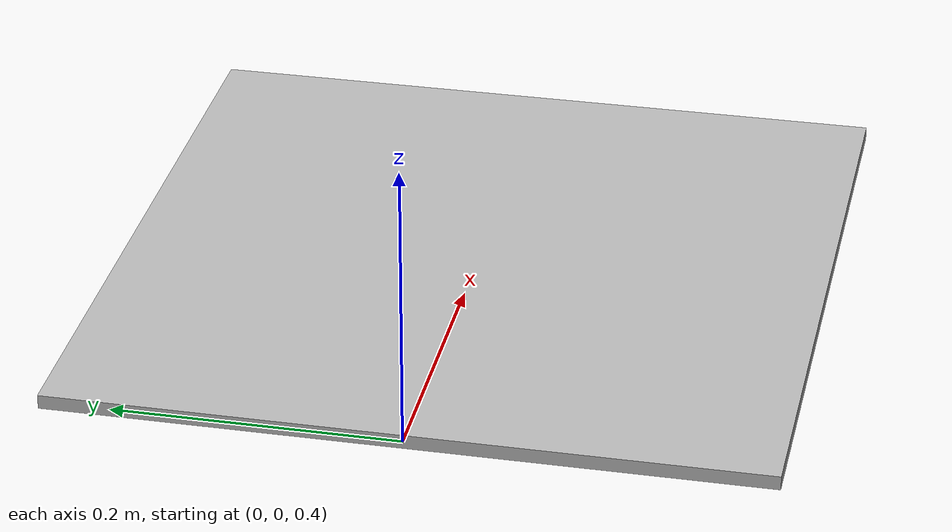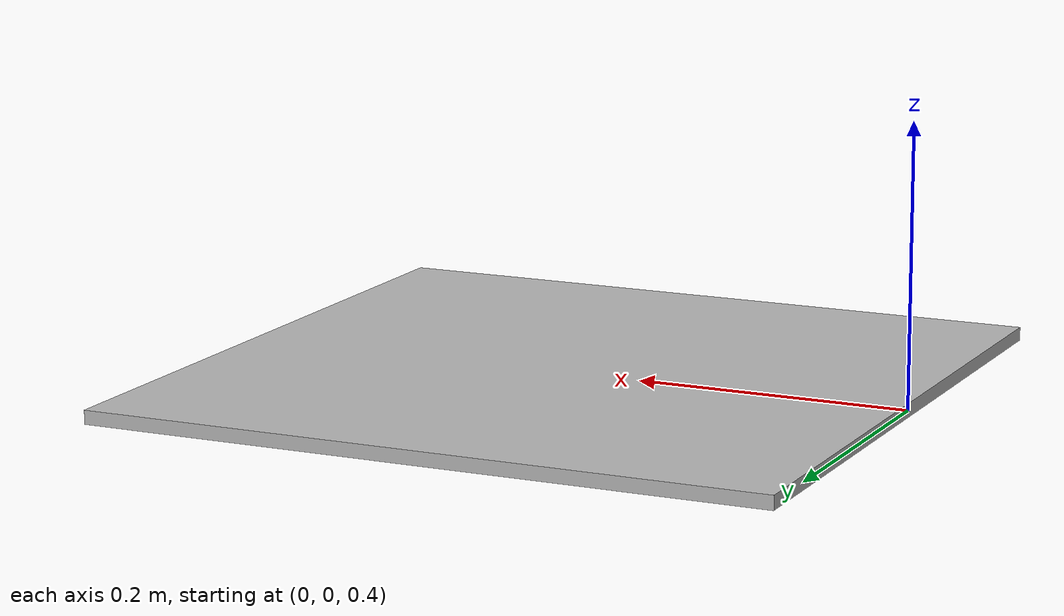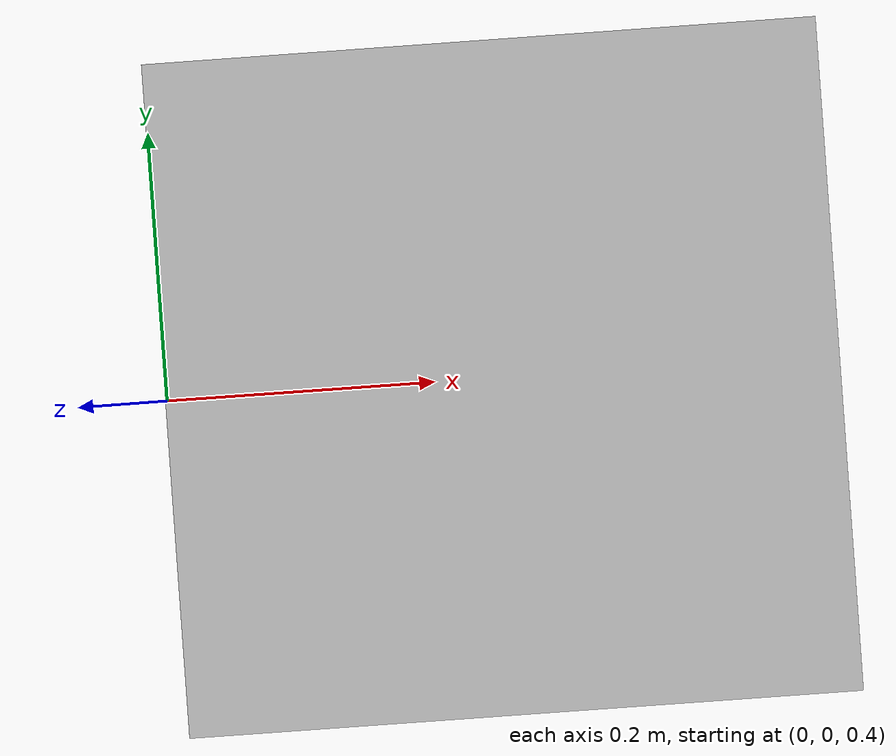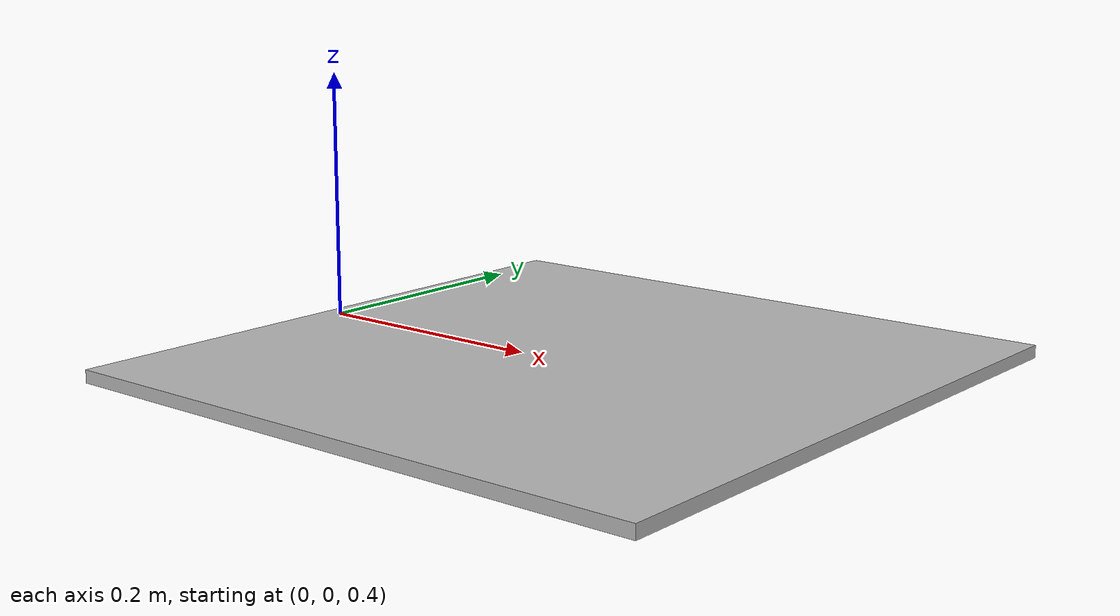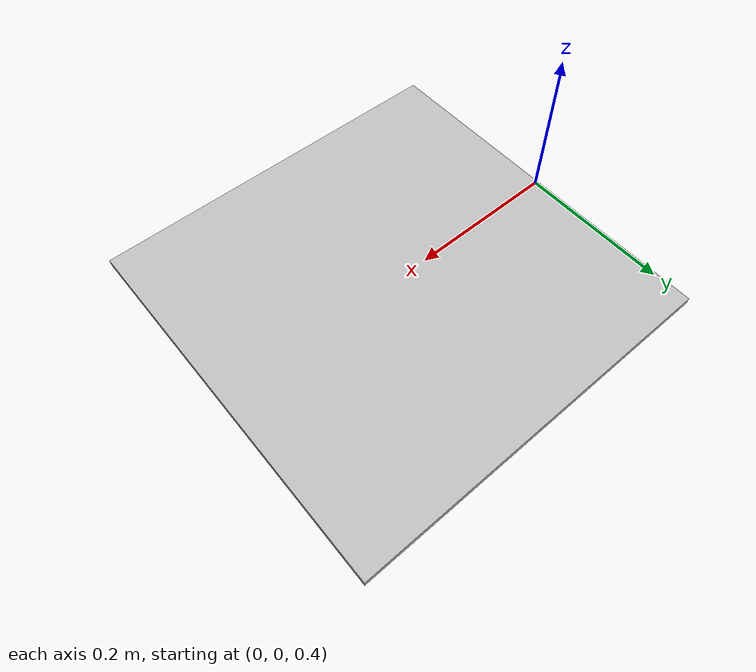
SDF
<?xml version="1.0" ?>
<sdf version="1.4">
  <model name="Marker0">
    <link name="link">
 <pose>0 0 .4 0 1.57 0</pose>
      <inertial>
        <pose>0.4 0 0.25 0 0 0</pose>
        <mass>1.5</mass>
      </inertial>
      <collision name="collision">
   <pose> 0 0 0.25 0 0 0</pose>
       <geometry>
	 <box>
	<size> .1 .5 .5 </size>
         </box>
	</geometry>
      </collision>
      <visual name="visual">
        <geometry>
          <mesh>
            <uri>model://marker0/meshes/Marker0.dae</uri>
          </mesh>
        </geometry>
      </visual>
    </link>
  </model>
</sdf>
